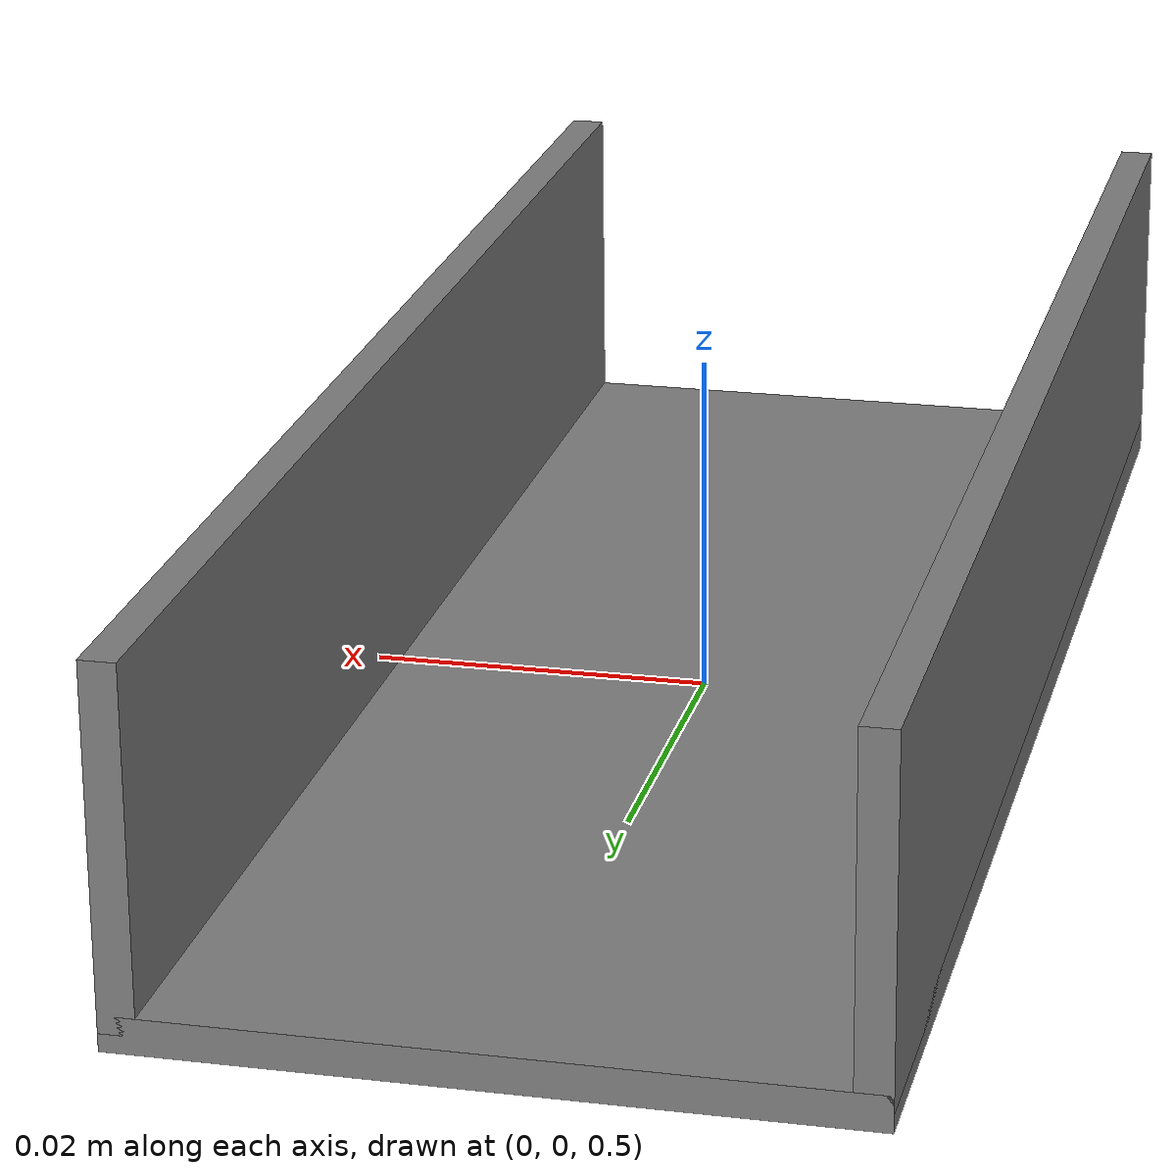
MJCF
<mujoco>
  <compiler meshdir="assets/meshes" texturedir="assets/textures" autolimits="true"/>

  <asset>

  </asset>

  <default>

    <!-- TrafficBarriers -->
    <default class="trafficBarriers_wall">
      <geom   type="box" size="0.01 0.05 0.001" euler="0 90 0"   />
    </default>

  </default>

  <worldbody>

      <!-- TrafficBarriers -->
      <body pos="0 0 0.5" euler="0 0 0">
        <!-- TrafficBarriers::floor -->
        <geom type="box" size="0.02 0.05 0.001"  pos="0 0 0"/>
        <!-- TrafficBarriers::walls -->

		<geom class="trafficBarriers_wall"  pos="0.019 0 0.01" />
		<geom class="trafficBarriers_wall"  pos="-0.019 0 0.01" />
      </body>

  </worldbody>

</mujoco>
